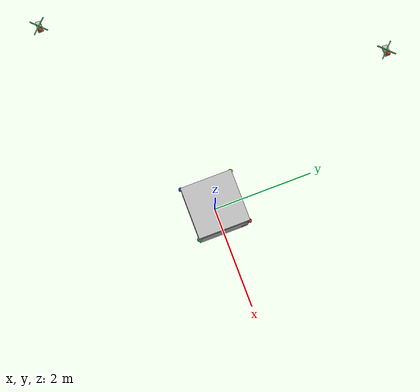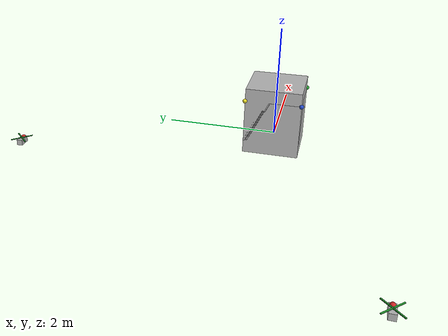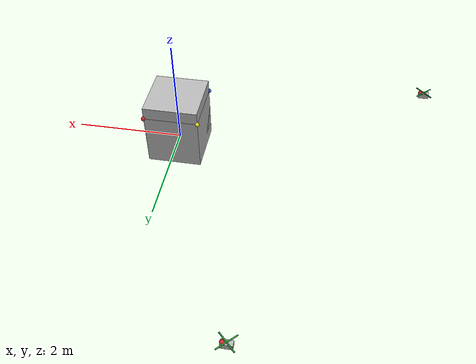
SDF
<sdf version="1.5">
 <world name="default">
  <model name="lost_person">
   <pose>0 0 0.26872 0 -0 0</pose>
   <link name="link">
    <sensor name="gps" type="gps"><always_on>1</always_on></sensor>
    <kinematic>1</kinematic>
    <collision name="collision">
     <geometry><box><size>1 1 1</size></box></geometry>
     <surface><friction><ode><mu>0</mu><mu2>0</mu2></ode></friction></surface>
    </collision>
    <visual name="visual"><geometry><box><size>1 1 1</size></box></geometry></visual>
    <visual name="visual_ul">
     <pose>0.5 0.5 0.5 0 -0 0</pose>
     <geometry><sphere><radius>0.04</radius></sphere></geometry>
     <material><script><name>Gazebo/Red</name><uri>__default__</uri></script></material>
    </visual>
    <visual name="visual_ur">
     <pose>0.5 -0.5 0.5 0 -0 0</pose>
     <geometry><sphere><radius>0.04</radius></sphere></geometry>
     <material><script><name>Gazebo/Green</name><uri>__default__</uri></script></material>
    </visual>
    <visual name="visual_lr">
     <pose>-0.5 -0.5 0.5 0 -0 0</pose>
     <geometry><sphere><radius>0.04</radius></sphere></geometry>
     <material><script><name>Gazebo/Blue</name><uri>__default__</uri></script></material>
    </visual>
    <visual name="visual_ll">
     <pose>-0.5 0.5 0.5 0 -0 0</pose>
     <geometry><sphere><radius>0.04</radius></sphere></geometry>
     <material><script><name>Gazebo/Yellow</name><uri>__default__</uri></script></material>
    </visual>
    <inertial>
     <inertia><ixx>1</ixx><ixy>0</ixy><ixz>0</ixz><iyy>1</iyy><iyz>0</iyz><izz>1</izz></inertia>
     <mass>1</mass>
    </inertial>
   </link>
   <plugin name="random" filename="libLostPersonControllerPlugin.so">
    <initial_velocity>0 0.2 0</initial_velocity>
    <velocity_factor>0.5</velocity_factor>
    <update_period>10</update_period>
    <gps>link::gps</gps>
    <swarm_search_area>
     <min_relative_latitude_deg>-0.01</min_relative_latitude_deg>
     <max_relative_latitude_deg>0.01</max_relative_latitude_deg>
     <min_relative_longitude_deg>-0.01</min_relative_longitude_deg>
     <max_relative_longitude_deg>0.01</max_relative_longitude_deg>
    </swarm_search_area>
   </plugin>
  </model>
  <model name="boo">
   <pose>0 0 0.5 0 -0 0</pose>
   <static>1</static>
   <link name="link">
    <kinematic>1</kinematic>
    <collision name="collision">
     <geometry><box><size>1 1 1</size></box></geometry>
     <surface><friction><ode><mu>0</mu><mu2>0</mu2></ode></friction></surface>
    </collision>
    <visual name="visual"><geometry><box><size>1 1 1</size></box></geometry></visual>
   </link>
   <plugin name="boo" filename="libBooControllerPlugin.so">
    <lost_person_model>lost_person</lost_person_model>
    <address>boo</address>
    <type>boo</type>
    <swarm_search_area>
     <min_relative_latitude_deg>-0.01</min_relative_latitude_deg>
     <max_relative_latitude_deg>0.01</max_relative_latitude_deg>
     <min_relative_longitude_deg>-0.01</min_relative_longitude_deg>
     <max_relative_longitude_deg>0.01</max_relative_longitude_deg>
    </swarm_search_area>
   </plugin>
  </model>
  <model name="rotor_8">
   <pose>-1.76459 4.32131 0.05 0 -0 0</pose>
   <link name="link">
    <sensor name="gps" type="gps">
     <gps>
      <position_sensing>
       <horizontal>
        <noise type="gaussian_quantized">
         <mean>0</mean>
         <stddev>4</stddev>
         <bias_mean>0</bias_mean>
         <bias_stddev>0</bias_stddev>
         <precision>0.001</precision>
        </noise>
       </horizontal>
       <vertical>
        <noise type="gaussian_quantized">
         <mean>0</mean>
         <stddev>8</stddev>
         <bias_mean>0</bias_mean>
         <bias_stddev>0</bias_stddev>
         <precision>0.01</precision>
        </noise>
       </vertical>
      </position_sensing>
      <velocity_sensing>
       <horizontal>
        <noise type="gaussian_quantized">
         <mean>0</mean>
         <stddev>4</stddev>
         <bias_mean>0</bias_mean>
         <bias_stddev>0</bias_stddev>
         <precision>0.001</precision>
        </noise>
       </horizontal>
       <vertical>
        <noise type="gaussian_quantized">
         <mean>0</mean>
         <stddev>8</stddev>
         <bias_mean>0</bias_mean>
         <bias_stddev>0</bias_stddev>
         <precision>0.01</precision>
        </noise>
       </vertical>
      </velocity_sensing>
     </gps>
     <always_on>1</always_on>
    </sensor>
    <sensor name="imu" type="imu">
     <imu>
      <angular_velocity>
       <x>
        <noise type="gaussian">
         <mean>0</mean>
         <stddev>0.0002</stddev>
         <bias_mean>7.5e-06</bias_mean>
         <bias_stddev>8e-07</bias_stddev>
        </noise>
       </x>
       <y>
        <noise type="gaussian">
         <mean>0</mean>
         <stddev>0.0002</stddev>
         <bias_mean>7.5e-06</bias_mean>
         <bias_stddev>8e-07</bias_stddev>
        </noise>
       </y>
       <z>
        <noise type="gaussian">
         <mean>0</mean>
         <stddev>0.0002</stddev>
         <bias_mean>7.5e-06</bias_mean>
         <bias_stddev>8e-07</bias_stddev>
        </noise>
       </z>
      </angular_velocity>
      <linear_acceleration>
       <x>
        <noise type="gaussian">
         <mean>0</mean>
         <stddev>0.0002</stddev>
         <bias_mean>7.5e-06</bias_mean>
         <bias_stddev>8e-07</bias_stddev>
        </noise>
       </x>
       <y>
        <noise type="gaussian">
         <mean>0</mean>
         <stddev>0.0002</stddev>
         <bias_mean>7.5e-06</bias_mean>
         <bias_stddev>8e-07</bias_stddev>
        </noise>
       </y>
       <z>
        <noise type="gaussian">
         <mean>0</mean>
         <stddev>0.0002</stddev>
         <bias_mean>7.5e-06</bias_mean>
         <bias_stddev>8e-07</bias_stddev>
        </noise>
       </z>
      </linear_acceleration>
     </imu>
     <always_on>1</always_on>
    </sensor>
    <sensor name="camera" type="logical_camera">
     <logical_camera>
      <near>0.1</near>
      <far>50</far>
      <horizontal_fov>1.4656</horizontal_fov>
      <aspect_ratio>1.778</aspect_ratio>
     </logical_camera>
     <visualize>0</visualize>
     <always_on>1</always_on>
    </sensor>
    <kinematic>1</kinematic>
    <gravity>0</gravity>
    <collision name="collision"><geometry><box><size>0.2 0.1 0.1</size></box></geometry></collision>
    <visual name="visual"><geometry><box><size>0.2 0.1 0.1</size></box></geometry></visual>
    <visual name="visual_front">
     <pose>0.07 0 0.04 0 -0 0</pose>
     <geometry><sphere><radius>0.04</radius></sphere></geometry>
     <material><script><name>Gazebo/Red</name><uri>__default__</uri></script></material>
    </visual>
    <visual name="visual_blade1">
     <pose>0 0 0.055 0 -0 0.78539</pose>
     <geometry><box><size>0.4 0.02 0.01</size></box></geometry>
     <material><script><name>Gazebo/Green</name><uri>__default__</uri></script></material>
    </visual>
    <visual name="visual_blade2">
     <pose>0 0 0.055 0 -0 2.3562</pose>
     <geometry><box><size>0.4 0.02 0.01</size></box></geometry>
     <material><script><name>Gazebo/Green</name><uri>__default__</uri></script></material>
    </visual>
    <inertial>
     <inertia><ixx>1</ixx><ixy>0</ixy><ixz>0</ixz><iyy>1</iyy><iyz>0</iyz><izz>1</izz></inertia>
     <mass>1</mass>
    </inertial>
   </link>
   <plugin name="swarm_controller_rotor_8" filename="libTeamControllerPlugin.so">
    <type>rotor</type>
    <launch_vehicle>ground_8</launch_vehicle>
    <camera>link::camera</camera>
    <gps>link::gps</gps>
    <imu>link::imu</imu>
    <address>192.168.3.9</address>
    <num_messages>1</num_messages>
    <swarm_search_area>
     <min_relative_latitude_deg>-0.01</min_relative_latitude_deg>
     <max_relative_latitude_deg>0.01</max_relative_latitude_deg>
     <min_relative_longitude_deg>-0.01</min_relative_longitude_deg>
     <max_relative_longitude_deg>0.01</max_relative_longitude_deg>
    </swarm_search_area>
    <battery>
     <capacity>3500</capacity>
     <consumption>0</consumption>
     <consumption_factor>0.8</consumption_factor>
    </battery>
   </plugin>
  </model>
  <model name="rotor_9">
   <pose>-4.67184 -2.00053 0.05 0 -0 0</pose>
   <link name="link">
    <sensor name="gps" type="gps">
     <gps>
      <position_sensing>
       <horizontal>
        <noise type="gaussian_quantized">
         <mean>0</mean>
         <stddev>4</stddev>
         <bias_mean>0</bias_mean>
         <bias_stddev>0</bias_stddev>
         <precision>0.001</precision>
        </noise>
       </horizontal>
       <vertical>
        <noise type="gaussian_quantized">
         <mean>0</mean>
         <stddev>8</stddev>
         <bias_mean>0</bias_mean>
         <bias_stddev>0</bias_stddev>
         <precision>0.01</precision>
        </noise>
       </vertical>
      </position_sensing>
      <velocity_sensing>
       <horizontal>
        <noise type="gaussian_quantized">
         <mean>0</mean>
         <stddev>4</stddev>
         <bias_mean>0</bias_mean>
         <bias_stddev>0</bias_stddev>
         <precision>0.001</precision>
        </noise>
       </horizontal>
       <vertical>
        <noise type="gaussian_quantized">
         <mean>0</mean>
         <stddev>8</stddev>
         <bias_mean>0</bias_mean>
         <bias_stddev>0</bias_stddev>
         <precision>0.01</precision>
        </noise>
       </vertical>
      </velocity_sensing>
     </gps>
     <always_on>1</always_on>
    </sensor>
    <sensor name="imu" type="imu">
     <imu>
      <angular_velocity>
       <x>
        <noise type="gaussian">
         <mean>0</mean>
         <stddev>0.0002</stddev>
         <bias_mean>7.5e-06</bias_mean>
         <bias_stddev>8e-07</bias_stddev>
        </noise>
       </x>
       <y>
        <noise type="gaussian">
         <mean>0</mean>
         <stddev>0.0002</stddev>
         <bias_mean>7.5e-06</bias_mean>
         <bias_stddev>8e-07</bias_stddev>
        </noise>
       </y>
       <z>
        <noise type="gaussian">
         <mean>0</mean>
         <stddev>0.0002</stddev>
         <bias_mean>7.5e-06</bias_mean>
         <bias_stddev>8e-07</bias_stddev>
        </noise>
       </z>
      </angular_velocity>
      <linear_acceleration>
       <x>
        <noise type="gaussian">
         <mean>0</mean>
         <stddev>0.0002</stddev>
         <bias_mean>7.5e-06</bias_mean>
         <bias_stddev>8e-07</bias_stddev>
        </noise>
       </x>
       <y>
        <noise type="gaussian">
         <mean>0</mean>
         <stddev>0.0002</stddev>
         <bias_mean>7.5e-06</bias_mean>
         <bias_stddev>8e-07</bias_stddev>
        </noise>
       </y>
       <z>
        <noise type="gaussian">
         <mean>0</mean>
         <stddev>0.0002</stddev>
         <bias_mean>7.5e-06</bias_mean>
         <bias_stddev>8e-07</bias_stddev>
        </noise>
       </z>
      </linear_acceleration>
     </imu>
     <always_on>1</always_on>
    </sensor>
    <sensor name="camera" type="logical_camera">
     <logical_camera>
      <near>0.1</near>
      <far>50</far>
      <horizontal_fov>1.4656</horizontal_fov>
      <aspect_ratio>1.778</aspect_ratio>
     </logical_camera>
     <visualize>0</visualize>
     <always_on>1</always_on>
    </sensor>
    <kinematic>1</kinematic>
    <gravity>0</gravity>
    <collision name="collision"><geometry><box><size>0.2 0.1 0.1</size></box></geometry></collision>
    <visual name="visual"><geometry><box><size>0.2 0.1 0.1</size></box></geometry></visual>
    <visual name="visual_front">
     <pose>0.07 0 0.04 0 -0 0</pose>
     <geometry><sphere><radius>0.04</radius></sphere></geometry>
     <material><script><name>Gazebo/Red</name><uri>__default__</uri></script></material>
    </visual>
    <visual name="visual_blade1">
     <pose>0 0 0.055 0 -0 0.78539</pose>
     <geometry><box><size>0.4 0.02 0.01</size></box></geometry>
     <material><script><name>Gazebo/Green</name><uri>__default__</uri></script></material>
    </visual>
    <visual name="visual_blade2">
     <pose>0 0 0.055 0 -0 2.3562</pose>
     <geometry><box><size>0.4 0.02 0.01</size></box></geometry>
     <material><script><name>Gazebo/Green</name><uri>__default__</uri></script></material>
    </visual>
    <inertial>
     <inertia><ixx>1</ixx><ixy>0</ixy><ixz>0</ixz><iyy>1</iyy><iyz>0</iyz><izz>1</izz></inertia>
     <mass>1</mass>
    </inertial>
   </link>
   <plugin name="swarm_controller_rotor_9" filename="libTeamControllerPlugin.so">
    <type>rotor</type>
    <launch_vehicle>ground_9</launch_vehicle>
    <camera>link::camera</camera>
    <gps>link::gps</gps>
    <imu>link::imu</imu>
    <address>192.168.3.10</address>
    <num_messages>1</num_messages>
    <swarm_search_area>
     <min_relative_latitude_deg>-0.01</min_relative_latitude_deg>
     <max_relative_latitude_deg>0.01</max_relative_latitude_deg>
     <min_relative_longitude_deg>-0.01</min_relative_longitude_deg>
     <max_relative_longitude_deg>0.01</max_relative_longitude_deg>
    </swarm_search_area>
    <battery>
     <capacity>3500</capacity>
     <consumption>0</consumption>
     <consumption_factor>0.8</consumption_factor>
    </battery>
   </plugin>
  </model>
 </world>
</sdf>
